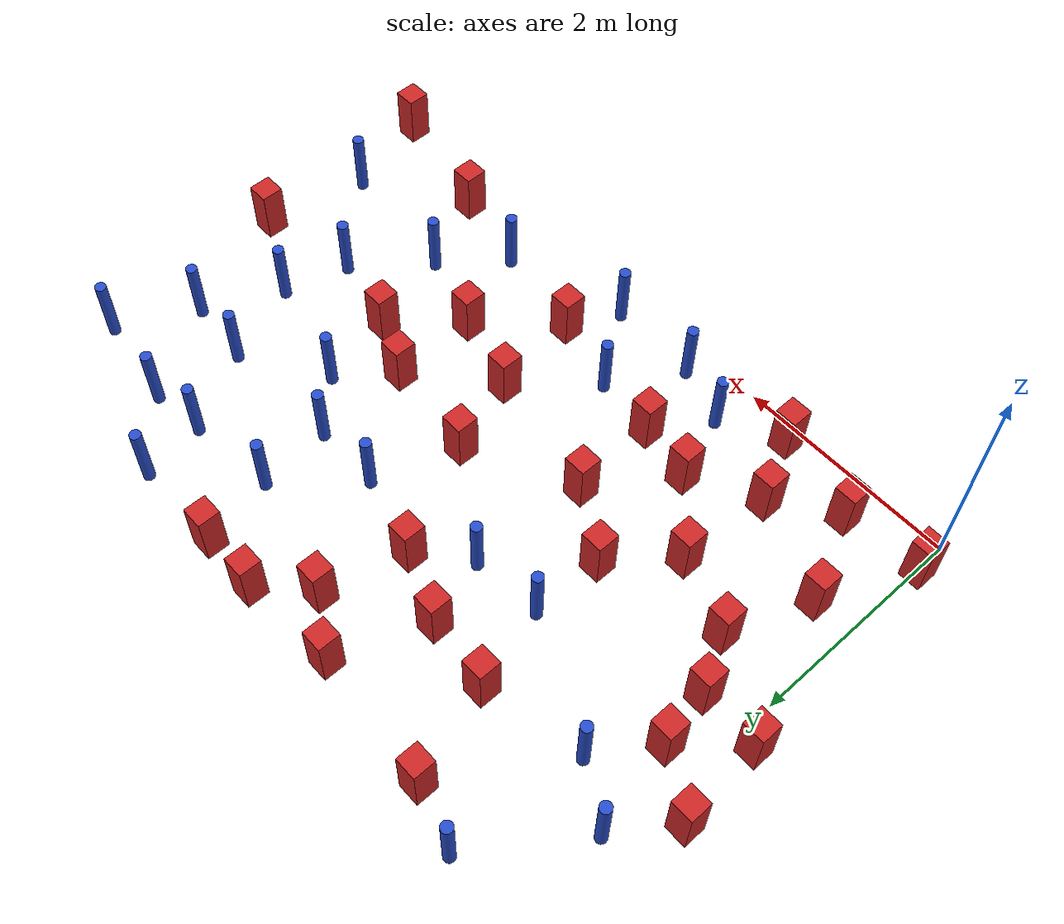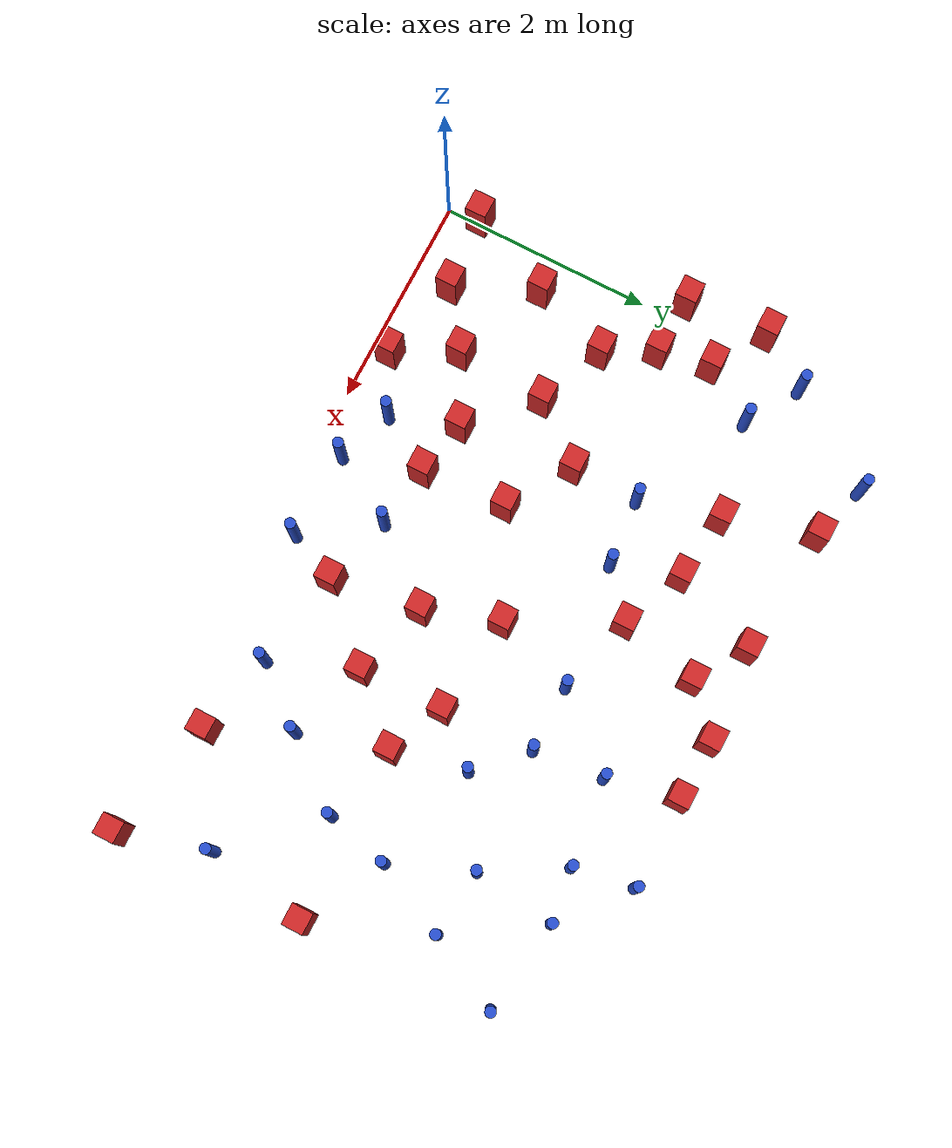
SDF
<sdf version="1.6">
 <model name="dense_50">
  <model name="pole_obstacle5">
   <static>true</static>
   <pose>4.54238996978 2.56478637814 7.38925637345e-09 -8.47170692798e-08 1.24976764937e-08 -1.74513093023e-07</pose>
   <link name="link">
    <pose>0 0 0.3 0 -0 0</pose>
    <inertial>
     <mass>1</mass>
     <inertia><ixx>0.145833</ixx><ixy>0</ixy><ixz>0</ixz><iyy>0.145833</iyy><iyz>0</iyz><izz>0.125</izz></inertia>
    </inertial>
    <collision name="collision">
     <geometry><cylinder><radius>0.05</radius><length>.6</length></cylinder></geometry>
    </collision>
    <visual name="visual">
     <geometry><cylinder><radius>0.05</radius><length>.6</length></cylinder></geometry>
     <material>
      <script><name>Gazebo/Blue</name><uri>file://media/materials/scripts/gazebo.material</uri></script>
     </material>
    </visual>
   </link>
  </model>
  <model name="square_post_obstacle8">
   <static>true</static>
   <pose>-0.0129463398346 0.317881958594 1.91545236811e-07 -7.35059704564e-06 1.12565212e-07 2.39332434364e-05</pose>
   <link name="link">
    <pose>0 0 0.25 0 -0 0</pose>
    <inertial>
     <mass>100</mass>
     <inertia>
      <ixx>0.166667</ixx>
      <ixy>0</ixy>
      <ixz>0</ixz>
      <iyy>0.166667</iyy>
      <iyz>0</iyz>
      <izz>0.166667</izz>
     </inertia>
    </inertial>
    <collision name="collision"><geometry><box><size>.2 .2 .5</size></box></geometry></collision>
    <visual name="visual">
     <geometry><box><size>.2 .2 .5</size></box></geometry>
     <material>
      <script><name>Gazebo/Red</name><uri>file://media/materials/scripts/gazebo.material</uri></script>
     </material>
    </visual>
   </link>
  </model>
  <model name="pole_obstacle9">
   <static>true</static>
   <pose>4.86439608183 3.7236601719 7.38925637345e-09 -8.47170692798e-08 1.24976764937e-08 -1.74513093023e-07</pose>
   <link name="link">
    <pose>0 0 0.3 0 -0 0</pose>
    <inertial>
     <mass>1</mass>
     <inertia><ixx>0.145833</ixx><ixy>0</ixy><ixz>0</ixz><iyy>0.145833</iyy><iyz>0</iyz><izz>0.125</izz></inertia>
    </inertial>
    <collision name="collision">
     <geometry><cylinder><radius>0.05</radius><length>.6</length></cylinder></geometry>
    </collision>
    <visual name="visual">
     <geometry><cylinder><radius>0.05</radius><length>.6</length></cylinder></geometry>
     <material>
      <script><name>Gazebo/Blue</name><uri>file://media/materials/scripts/gazebo.material</uri></script>
     </material>
    </visual>
   </link>
  </model>
  <model name="square_post_obstacle17">
   <static>true</static>
   <pose>5.25384583525 0.369909139949 1.91545236811e-07 -7.35059704564e-06 1.12565212e-07 2.39332434364e-05</pose>
   <link name="link">
    <pose>0 0 0.25 0 -0 0</pose>
    <inertial>
     <mass>100</mass>
     <inertia>
      <ixx>0.166667</ixx>
      <ixy>0</ixy>
      <ixz>0</ixz>
      <iyy>0.166667</iyy>
      <iyz>0</iyz>
      <izz>0.166667</izz>
     </inertia>
    </inertial>
    <collision name="collision"><geometry><box><size>.2 .2 .5</size></box></geometry></collision>
    <visual name="visual">
     <geometry><box><size>.2 .2 .5</size></box></geometry>
     <material>
      <script><name>Gazebo/Red</name><uri>file://media/materials/scripts/gazebo.material</uri></script>
     </material>
    </visual>
   </link>
  </model>
  <model name="square_post_obstacle20">
   <static>true</static>
   <pose>1.21002610688 0.756672883856 1.91545236811e-07 -7.35059704564e-06 1.12565212e-07 2.39332434364e-05</pose>
   <link name="link">
    <pose>0 0 0.25 0 -0 0</pose>
    <inertial>
     <mass>100</mass>
     <inertia>
      <ixx>0.166667</ixx>
      <ixy>0</ixy>
      <ixz>0</ixz>
      <iyy>0.166667</iyy>
      <iyz>0</iyz>
      <izz>0.166667</izz>
     </inertia>
    </inertial>
    <collision name="collision"><geometry><box><size>.2 .2 .5</size></box></geometry></collision>
    <visual name="visual">
     <geometry><box><size>.2 .2 .5</size></box></geometry>
     <material>
      <script><name>Gazebo/Red</name><uri>file://media/materials/scripts/gazebo.material</uri></script>
     </material>
    </visual>
   </link>
  </model>
  <model name="square_post_obstacle29">
   <static>true</static>
   <pose>-0.156257540047 2.35726194431 1.91545236811e-07 -7.35059704564e-06 1.12565212e-07 2.39332434364e-05</pose>
   <link name="link">
    <pose>0 0 0.25 0 -0 0</pose>
    <inertial>
     <mass>100</mass>
     <inertia>
      <ixx>0.166667</ixx>
      <ixy>0</ixy>
      <ixz>0</ixz>
      <iyy>0.166667</iyy>
      <iyz>0</iyz>
      <izz>0.166667</izz>
     </inertia>
    </inertial>
    <collision name="collision"><geometry><box><size>.2 .2 .5</size></box></geometry></collision>
    <visual name="visual">
     <geometry><box><size>.2 .2 .5</size></box></geometry>
     <material>
      <script><name>Gazebo/Red</name><uri>file://media/materials/scripts/gazebo.material</uri></script>
     </material>
    </visual>
   </link>
  </model>
  <model name="square_post_obstacle33">
   <static>true</static>
   <pose>0.347890601713 1.13131780654 1.91545236811e-07 -7.35059704564e-06 1.12565212e-07 2.39332434364e-05</pose>
   <link name="link">
    <pose>0 0 0.25 0 -0 0</pose>
    <inertial>
     <mass>100</mass>
     <inertia>
      <ixx>0.166667</ixx>
      <ixy>0</ixy>
      <ixz>0</ixz>
      <iyy>0.166667</iyy>
      <iyz>0</iyz>
      <izz>0.166667</izz>
     </inertia>
    </inertial>
    <collision name="collision"><geometry><box><size>.2 .2 .5</size></box></geometry></collision>
    <visual name="visual">
     <geometry><box><size>.2 .2 .5</size></box></geometry>
     <material>
      <script><name>Gazebo/Red</name><uri>file://media/materials/scripts/gazebo.material</uri></script>
     </material>
    </visual>
   </link>
  </model>
  <model name="pole_obstacle34">
   <static>true</static>
   <pose>6.15226355741 0.936716093503 7.38925637345e-09 -8.47170692799e-08 1.24976765038e-08 -1.74513093018e-07</pose>
   <link name="link">
    <pose>0 0 0.3 0 -0 0</pose>
    <inertial>
     <mass>1</mass>
     <inertia><ixx>0.145833</ixx><ixy>0</ixy><ixz>0</ixz><iyy>0.145833</iyy><iyz>0</iyz><izz>0.125</izz></inertia>
    </inertial>
    <collision name="collision">
     <geometry><cylinder><radius>0.05</radius><length>.6</length></cylinder></geometry>
    </collision>
    <visual name="visual">
     <geometry><cylinder><radius>0.05</radius><length>.6</length></cylinder></geometry>
     <material>
      <script><name>Gazebo/Blue</name><uri>file://media/materials/scripts/gazebo.material</uri></script>
     </material>
    </visual>
   </link>
  </model>
  <model name="pole_obstacle36">
   <static>true</static>
   <pose>4.49692211645 0.537638080862 7.38925637345e-09 -8.471706928e-08 1.24976765164e-08 -1.74513093012e-07</pose>
   <link name="link">
    <pose>0 0 0.3 0 -0 0</pose>
    <inertial>
     <mass>1</mass>
     <inertia><ixx>0.145833</ixx><ixy>0</ixy><ixz>0</ixz><iyy>0.145833</iyy><iyz>0</iyz><izz>0.125</izz></inertia>
    </inertial>
    <collision name="collision">
     <geometry><cylinder><radius>0.05</radius><length>.6</length></cylinder></geometry>
    </collision>
    <visual name="visual">
     <geometry><cylinder><radius>0.05</radius><length>.6</length></cylinder></geometry>
     <material>
      <script><name>Gazebo/Blue</name><uri>file://media/materials/scripts/gazebo.material</uri></script>
     </material>
    </visual>
   </link>
  </model>
  <model name="pole_obstacle42">
   <static>true</static>
   <pose>0.625954875407 3.32088880928 7.38925637345e-09 -8.47170692799e-08 1.2497676509e-08 -1.74513093016e-07</pose>
   <link name="link">
    <pose>0 0 0.3 0 -0 0</pose>
    <inertial>
     <mass>1</mass>
     <inertia><ixx>0.145833</ixx><ixy>0</ixy><ixz>0</ixz><iyy>0.145833</iyy><iyz>0</iyz><izz>0.125</izz></inertia>
    </inertial>
    <collision name="collision">
     <geometry><cylinder><radius>0.05</radius><length>.6</length></cylinder></geometry>
    </collision>
    <visual name="visual">
     <geometry><cylinder><radius>0.05</radius><length>.6</length></cylinder></geometry>
     <material>
      <script><name>Gazebo/Blue</name><uri>file://media/materials/scripts/gazebo.material</uri></script>
     </material>
    </visual>
   </link>
  </model>
  <model name="square_post_obstacle44">
   <static>true</static>
   <pose>3.23896728383 2.22645428364 1.91545236811e-07 -7.35059704564e-06 1.12565212e-07 2.39332434364e-05</pose>
   <link name="link">
    <pose>0 0 0.25 0 -0 0</pose>
    <inertial>
     <mass>100</mass>
     <inertia>
      <ixx>0.166667</ixx>
      <ixy>0</ixy>
      <ixz>0</ixz>
      <iyy>0.166667</iyy>
      <iyz>0</iyz>
      <izz>0.166667</izz>
     </inertia>
    </inertial>
    <collision name="collision"><geometry><box><size>.2 .2 .5</size></box></geometry></collision>
    <visual name="visual">
     <geometry><box><size>.2 .2 .5</size></box></geometry>
     <material>
      <script><name>Gazebo/Red</name><uri>file://media/materials/scripts/gazebo.material</uri></script>
     </material>
    </visual>
   </link>
  </model>
  <model name="square_post_obstacle51">
   <static>true</static>
   <pose>0.380697865721 2.33058414749 1.91545236811e-07 -7.35059704564e-06 1.12565212e-07 2.39332434364e-05</pose>
   <link name="link">
    <pose>0 0 0.25 0 -0 0</pose>
    <inertial>
     <mass>100</mass>
     <inertia>
      <ixx>0.166667</ixx>
      <ixy>0</ixy>
      <ixz>0</ixz>
      <iyy>0.166667</iyy>
      <iyz>0</iyz>
      <izz>0.166667</izz>
     </inertia>
    </inertial>
    <collision name="collision"><geometry><box><size>.2 .2 .5</size></box></geometry></collision>
    <visual name="visual">
     <geometry><box><size>.2 .2 .5</size></box></geometry>
     <material>
      <script><name>Gazebo/Red</name><uri>file://media/materials/scripts/gazebo.material</uri></script>
     </material>
    </visual>
   </link>
  </model>
  <model name="pole_obstacle55">
   <static>true</static>
   <pose>5.42195279625 1.69428588885 7.38925637345e-09 -8.471706928e-08 1.24976765134e-08 -1.74513093015e-07</pose>
   <link name="link">
    <pose>0 0 0.3 0 -0 0</pose>
    <inertial>
     <mass>1</mass>
     <inertia><ixx>0.145833</ixx><ixy>0</ixy><ixz>0</ixz><iyy>0.145833</iyy><iyz>0</iyz><izz>0.125</izz></inertia>
    </inertial>
    <collision name="collision">
     <geometry><cylinder><radius>0.05</radius><length>.6</length></cylinder></geometry>
    </collision>
    <visual name="visual">
     <geometry><cylinder><radius>0.05</radius><length>.6</length></cylinder></geometry>
     <material>
      <script><name>Gazebo/Blue</name><uri>file://media/materials/scripts/gazebo.material</uri></script>
     </material>
    </visual>
   </link>
  </model>
  <model name="square_post_obstacle58">
   <static>true</static>
   <pose>3.34307952893 4.29897692383 1.91545236811e-07 -7.35059704564e-06 1.12565212e-07 2.39332434364e-05</pose>
   <link name="link">
    <pose>0 0 0.25 0 -0 0</pose>
    <inertial>
     <mass>100</mass>
     <inertia>
      <ixx>0.166667</ixx>
      <ixy>0</ixy>
      <ixz>0</ixz>
      <iyy>0.166667</iyy>
      <iyz>0</iyz>
      <izz>0.166667</izz>
     </inertia>
    </inertial>
    <collision name="collision"><geometry><box><size>.2 .2 .5</size></box></geometry></collision>
    <visual name="visual">
     <geometry><box><size>.2 .2 .5</size></box></geometry>
     <material>
      <script><name>Gazebo/Red</name><uri>file://media/materials/scripts/gazebo.material</uri></script>
     </material>
    </visual>
   </link>
  </model>
  <model name="pole_obstacle56">
   <static>true</static>
   <pose>2.03568391977 0.451290150566 7.38925637345e-09 -8.47170692799e-08 1.24976765122e-08 -1.74513093015e-07</pose>
   <link name="link">
    <pose>0 0 0.3 0 -0 0</pose>
    <inertial>
     <mass>1</mass>
     <inertia><ixx>0.145833</ixx><ixy>0</ixy><ixz>0</ixz><iyy>0.145833</iyy><iyz>0</iyz><izz>0.125</izz></inertia>
    </inertial>
    <collision name="collision">
     <geometry><cylinder><radius>0.05</radius><length>.6</length></cylinder></geometry>
    </collision>
    <visual name="visual">
     <geometry><cylinder><radius>0.05</radius><length>.6</length></cylinder></geometry>
     <material>
      <script><name>Gazebo/Blue</name><uri>file://media/materials/scripts/gazebo.material</uri></script>
     </material>
    </visual>
   </link>
  </model>
  <model name="square_post_obstacle69">
   <static>true</static>
   <pose>1.70439567199 2.14129918748 1.91545236811e-07 -7.35059704564e-06 1.12565212e-07 2.39332434364e-05</pose>
   <link name="link">
    <pose>0 0 0.25 0 -0 0</pose>
    <inertial>
     <mass>100</mass>
     <inertia>
      <ixx>0.166667</ixx>
      <ixy>0</ixy>
      <ixz>0</ixz>
      <iyy>0.166667</iyy>
      <iyz>0</iyz>
      <izz>0.166667</izz>
     </inertia>
    </inertial>
    <collision name="collision"><geometry><box><size>.2 .2 .5</size></box></geometry></collision>
    <visual name="visual">
     <geometry><box><size>.2 .2 .5</size></box></geometry>
     <material>
      <script><name>Gazebo/Red</name><uri>file://media/materials/scripts/gazebo.material</uri></script>
     </material>
    </visual>
   </link>
  </model>
  <model name="pole_obstacle100">
   <static>true</static>
   <pose>2.55865952431 0.255963174134 7.38925637345e-09 -8.471706928e-08 1.24976765126e-08 -1.74513093015e-07</pose>
   <link name="link">
    <pose>0 0 0.3 0 -0 0</pose>
    <inertial>
     <mass>1</mass>
     <inertia><ixx>0.145833</ixx><ixy>0</ixy><ixz>0</ixz><iyy>0.145833</iyy><iyz>0</iyz><izz>0.125</izz></inertia>
    </inertial>
    <collision name="collision">
     <geometry><cylinder><radius>0.05</radius><length>.6</length></cylinder></geometry>
    </collision>
    <visual name="visual">
     <geometry><cylinder><radius>0.05</radius><length>.6</length></cylinder></geometry>
     <material>
      <script><name>Gazebo/Blue</name><uri>file://media/materials/scripts/gazebo.material</uri></script>
     </material>
    </visual>
   </link>
  </model>
  <model name="square_post_obstacle90">
   <static>true</static>
   <pose>2.46440706959 4.23406513678 1.91545236811e-07 -7.35059704564e-06 1.12565212e-07 2.39332434364e-05</pose>
   <link name="link">
    <pose>0 0 0.25 0 -0 0</pose>
    <inertial>
     <mass>100</mass>
     <inertia>
      <ixx>0.166667</ixx>
      <ixy>0</ixy>
      <ixz>0</ixz>
      <iyy>0.166667</iyy>
      <iyz>0</iyz>
      <izz>0.166667</izz>
     </inertia>
    </inertial>
    <collision name="collision"><geometry><box><size>.2 .2 .5</size></box></geometry></collision>
    <visual name="visual">
     <geometry><box><size>.2 .2 .5</size></box></geometry>
     <material>
      <script><name>Gazebo/Red</name><uri>file://media/materials/scripts/gazebo.material</uri></script>
     </material>
    </visual>
   </link>
  </model>
  <model name="pole_obstacle103">
   <static>true</static>
   <pose>5.36540105432 3.78649801736 7.38925637345e-09 -8.47170692798e-08 1.24976764937e-08 -1.74513093023e-07</pose>
   <link name="link">
    <pose>0 0 0.3 0 -0 0</pose>
    <inertial>
     <mass>1</mass>
     <inertia><ixx>0.145833</ixx><ixy>0</ixy><ixz>0</ixz><iyy>0.145833</iyy><iyz>0</iyz><izz>0.125</izz></inertia>
    </inertial>
    <collision name="collision">
     <geometry><cylinder><radius>0.05</radius><length>.6</length></cylinder></geometry>
    </collision>
    <visual name="visual">
     <geometry><cylinder><radius>0.05</radius><length>.6</length></cylinder></geometry>
     <material>
      <script><name>Gazebo/Blue</name><uri>file://media/materials/scripts/gazebo.material</uri></script>
     </material>
    </visual>
   </link>
  </model>
  <model name="square_post_obstacle94">
   <static>true</static>
   <pose>2.75186810921 3.18628712781 1.91545236811e-07 -7.35059704564e-06 1.12565212e-07 2.39332434364e-05</pose>
   <link name="link">
    <pose>0 0 0.25 0 -0 0</pose>
    <inertial>
     <mass>100</mass>
     <inertia>
      <ixx>0.166667</ixx>
      <ixy>0</ixy>
      <ixz>0</ixz>
      <iyy>0.166667</iyy>
      <iyz>0</iyz>
      <izz>0.166667</izz>
     </inertia>
    </inertial>
    <collision name="collision"><geometry><box><size>.2 .2 .5</size></box></geometry></collision>
    <visual name="visual">
     <geometry><box><size>.2 .2 .5</size></box></geometry>
     <material>
      <script><name>Gazebo/Red</name><uri>file://media/materials/scripts/gazebo.material</uri></script>
     </material>
    </visual>
   </link>
  </model>
  <model name="square_post_obstacle98">
   <static>true</static>
   <pose>2.34094670929 0.967388931751 1.91545236811e-07 -7.35059704564e-06 1.12565212e-07 2.39332434364e-05</pose>
   <link name="link">
    <pose>0 0 0.25 0 -0 0</pose>
    <inertial>
     <mass>100</mass>
     <inertia>
      <ixx>0.166667</ixx>
      <ixy>0</ixy>
      <ixz>0</ixz>
      <iyy>0.166667</iyy>
      <iyz>0</iyz>
      <izz>0.166667</izz>
     </inertia>
    </inertial>
    <collision name="collision"><geometry><box><size>.2 .2 .5</size></box></geometry></collision>
    <visual name="visual">
     <geometry><box><size>.2 .2 .5</size></box></geometry>
     <material>
      <script><name>Gazebo/Red</name><uri>file://media/materials/scripts/gazebo.material</uri></script>
     </material>
    </visual>
   </link>
  </model>
  <model name="square_post_obstacle108">
   <static>true</static>
   <pose>1.82022127979 1.06612872411 1.91545236811e-07 -7.35059704564e-06 1.12565212e-07 2.39332434364e-05</pose>
   <link name="link">
    <pose>0 0 0.25 0 -0 0</pose>
    <inertial>
     <mass>100</mass>
     <inertia>
      <ixx>0.166667</ixx>
      <ixy>0</ixy>
      <ixz>0</ixz>
      <iyy>0.166667</iyy>
      <iyz>0</iyz>
      <izz>0.166667</izz>
     </inertia>
    </inertial>
    <collision name="collision"><geometry><box><size>.2 .2 .5</size></box></geometry></collision>
    <visual name="visual">
     <geometry><box><size>.2 .2 .5</size></box></geometry>
     <material>
      <script><name>Gazebo/Red</name><uri>file://media/materials/scripts/gazebo.material</uri></script>
     </material>
    </visual>
   </link>
  </model>
  <model name="pole_obstacle121">
   <static>true</static>
   <pose>3.49970595557 2.97972236115 7.38925637345e-09 -8.47170692798e-08 1.24976764939e-08 -1.74513093025e-07</pose>
   <link name="link">
    <pose>0 0 0.3 0 -0 0</pose>
    <inertial>
     <mass>1</mass>
     <inertia><ixx>0.145833</ixx><ixy>0</ixy><ixz>0</ixz><iyy>0.145833</iyy><iyz>0</iyz><izz>0.125</izz></inertia>
    </inertial>
    <collision name="collision">
     <geometry><cylinder><radius>0.05</radius><length>.6</length></cylinder></geometry>
    </collision>
    <visual name="visual">
     <geometry><cylinder><radius>0.05</radius><length>.6</length></cylinder></geometry>
     <material>
      <script><name>Gazebo/Blue</name><uri>file://media/materials/scripts/gazebo.material</uri></script>
     </material>
    </visual>
   </link>
  </model>
  <model name="pole_obstacle122">
   <static>true</static>
   <pose>5.89256325081 2.96693084631 7.38925637345e-09 -8.47170692798e-08 1.24976764937e-08 -1.74513093023e-07</pose>
   <link name="link">
    <pose>0 0 0.3 0 -0 0</pose>
    <inertial>
     <mass>1</mass>
     <inertia><ixx>0.145833</ixx><ixy>0</ixy><ixz>0</ixz><iyy>0.145833</iyy><iyz>0</iyz><izz>0.125</izz></inertia>
    </inertial>
    <collision name="collision">
     <geometry><cylinder><radius>0.05</radius><length>.6</length></cylinder></geometry>
    </collision>
    <visual name="visual">
     <geometry><cylinder><radius>0.05</radius><length>.6</length></cylinder></geometry>
     <material>
      <script><name>Gazebo/Blue</name><uri>file://media/materials/scripts/gazebo.material</uri></script>
     </material>
    </visual>
   </link>
  </model>
  <model name="square_post_obstacle118">
   <static>true</static>
   <pose>-0.218139517069 3.13630341641 1.91545236811e-07 -7.35059704564e-06 1.12565212e-07 2.39332434364e-05</pose>
   <link name="link">
    <pose>0 0 0.25 0 -0 0</pose>
    <inertial>
     <mass>100</mass>
     <inertia>
      <ixx>0.166667</ixx>
      <ixy>0</ixy>
      <ixz>0</ixz>
      <iyy>0.166667</iyy>
      <iyz>0</iyz>
      <izz>0.166667</izz>
     </inertia>
    </inertial>
    <collision name="collision"><geometry><box><size>.2 .2 .5</size></box></geometry></collision>
    <visual name="visual">
     <geometry><box><size>.2 .2 .5</size></box></geometry>
     <material>
      <script><name>Gazebo/Red</name><uri>file://media/materials/scripts/gazebo.material</uri></script>
     </material>
    </visual>
   </link>
  </model>
  <model name="square_post_obstacle125">
   <static>true</static>
   <pose>2.14942397595 3.43456352625 1.91545236811e-07 -7.35059704564e-06 1.12565212e-07 2.39332434364e-05</pose>
   <link name="link">
    <pose>0 0 0.25 0 -0 0</pose>
    <inertial>
     <mass>100</mass>
     <inertia>
      <ixx>0.166667</ixx>
      <ixy>0</ixy>
      <ixz>0</ixz>
      <iyy>0.166667</iyy>
      <iyz>0</iyz>
      <izz>0.166667</izz>
     </inertia>
    </inertial>
    <collision name="collision"><geometry><box><size>.2 .2 .5</size></box></geometry></collision>
    <visual name="visual">
     <geometry><box><size>.2 .2 .5</size></box></geometry>
     <material>
      <script><name>Gazebo/Red</name><uri>file://media/materials/scripts/gazebo.material</uri></script>
     </material>
    </visual>
   </link>
  </model>
  <model name="pole_obstacle140">
   <static>true</static>
   <pose>4.92893289476 1.07229710617 7.38925637345e-09 -8.471706928e-08 1.24976765134e-08 -1.74513093015e-07</pose>
   <link name="link">
    <pose>0 0 0.3 0 -0 0</pose>
    <inertial>
     <mass>1</mass>
     <inertia><ixx>0.145833</ixx><ixy>0</ixy><ixz>0</ixz><iyy>0.145833</iyy><iyz>0</iyz><izz>0.125</izz></inertia>
    </inertial>
    <collision name="collision">
     <geometry><cylinder><radius>0.05</radius><length>.6</length></cylinder></geometry>
    </collision>
    <visual name="visual">
     <geometry><cylinder><radius>0.05</radius><length>.6</length></cylinder></geometry>
     <material>
      <script><name>Gazebo/Blue</name><uri>file://media/materials/scripts/gazebo.material</uri></script>
     </material>
    </visual>
   </link>
  </model>
  <model name="pole_obstacle141">
   <static>true</static>
   <pose>4.12055723762 2.97585806209 7.38925637345e-09 -8.47170692798e-08 1.24976764937e-08 -1.74513093023e-07</pose>
   <link name="link">
    <pose>0 0 0.3 0 -0 0</pose>
    <inertial>
     <mass>1</mass>
     <inertia><ixx>0.145833</ixx><ixy>0</ixy><ixz>0</ixz><iyy>0.145833</iyy><iyz>0</iyz><izz>0.125</izz></inertia>
    </inertial>
    <collision name="collision">
     <geometry><cylinder><radius>0.05</radius><length>.6</length></cylinder></geometry>
    </collision>
    <visual name="visual">
     <geometry><cylinder><radius>0.05</radius><length>.6</length></cylinder></geometry>
     <material>
      <script><name>Gazebo/Blue</name><uri>file://media/materials/scripts/gazebo.material</uri></script>
     </material>
    </visual>
   </link>
  </model>
  <model name="square_post_obstacle127">
   <static>true</static>
   <pose>6.37756579108 0.111631129207 1.91545236811e-07 -7.35059704564e-06 1.12565212e-07 2.39332434364e-05</pose>
   <link name="link">
    <pose>0 0 0.25 0 -0 0</pose>
    <inertial>
     <mass>100</mass>
     <inertia>
      <ixx>0.166667</ixx>
      <ixy>0</ixy>
      <ixz>0</ixz>
      <iyy>0.166667</iyy>
      <iyz>0</iyz>
      <izz>0.166667</izz>
     </inertia>
    </inertial>
    <collision name="collision"><geometry><box><size>.2 .2 .5</size></box></geometry></collision>
    <visual name="visual">
     <geometry><box><size>.2 .2 .5</size></box></geometry>
     <material>
      <script><name>Gazebo/Red</name><uri>file://media/materials/scripts/gazebo.material</uri></script>
     </material>
    </visual>
   </link>
  </model>
  <model name="square_post_obstacle128">
   <static>true</static>
   <pose>3.90174752887 4.27979499866 1.91545236811e-07 -7.35059704564e-06 1.12565212e-07 2.39332434364e-05</pose>
   <link name="link">
    <pose>0 0 0.25 0 -0 0</pose>
    <inertial>
     <mass>100</mass>
     <inertia>
      <ixx>0.166667</ixx>
      <ixy>0</ixy>
      <ixz>0</ixz>
      <iyy>0.166667</iyy>
      <iyz>0</iyz>
      <izz>0.166667</izz>
     </inertia>
    </inertial>
    <collision name="collision"><geometry><box><size>.2 .2 .5</size></box></geometry></collision>
    <visual name="visual">
     <geometry><box><size>.2 .2 .5</size></box></geometry>
     <material>
      <script><name>Gazebo/Red</name><uri>file://media/materials/scripts/gazebo.material</uri></script>
     </material>
    </visual>
   </link>
  </model>
  <model name="square_post_obstacle131">
   <static>true</static>
   <pose>3.58319737693 0.709496786827 1.91545236811e-07 -7.35059704564e-06 1.12565212e-07 2.39332434364e-05</pose>
   <link name="link">
    <pose>0 0 0.25 0 -0 0</pose>
    <inertial>
     <mass>100</mass>
     <inertia>
      <ixx>0.166667</ixx>
      <ixy>0</ixy>
      <ixz>0</ixz>
      <iyy>0.166667</iyy>
      <iyz>0</iyz>
      <izz>0.166667</izz>
     </inertia>
    </inertial>
    <collision name="collision"><geometry><box><size>.2 .2 .5</size></box></geometry></collision>
    <visual name="visual">
     <geometry><box><size>.2 .2 .5</size></box></geometry>
     <material>
      <script><name>Gazebo/Red</name><uri>file://media/materials/scripts/gazebo.material</uri></script>
     </material>
    </visual>
   </link>
  </model>
  <model name="square_post_obstacle134">
   <static>true</static>
   <pose>2.29128909394 1.76275824219 1.91545236811e-07 -7.35059704564e-06 1.12565212e-07 2.39332434364e-05</pose>
   <link name="link">
    <pose>0 0 0.25 0 -0 0</pose>
    <inertial>
     <mass>100</mass>
     <inertia>
      <ixx>0.166667</ixx>
      <ixy>0</ixy>
      <ixz>0</ixz>
      <iyy>0.166667</iyy>
      <iyz>0</iyz>
      <izz>0.166667</izz>
     </inertia>
    </inertial>
    <collision name="collision"><geometry><box><size>.2 .2 .5</size></box></geometry></collision>
    <visual name="visual">
     <geometry><box><size>.2 .2 .5</size></box></geometry>
     <material>
      <script><name>Gazebo/Red</name><uri>file://media/materials/scripts/gazebo.material</uri></script>
     </material>
    </visual>
   </link>
  </model>
  <model name="square_post_obstacle135">
   <static>true</static>
   <pose>1.2628710877 4.3396809338 1.91545236811e-07 -7.35059704564e-06 1.12565212e-07 2.39332434364e-05</pose>
   <link name="link">
    <pose>0 0 0.25 0 -0 0</pose>
    <inertial>
     <mass>100</mass>
     <inertia>
      <ixx>0.166667</ixx>
      <ixy>0</ixy>
      <ixz>0</ixz>
      <iyy>0.166667</iyy>
      <iyz>0</iyz>
      <izz>0.166667</izz>
     </inertia>
    </inertial>
    <collision name="collision"><geometry><box><size>.2 .2 .5</size></box></geometry></collision>
    <visual name="visual">
     <geometry><box><size>.2 .2 .5</size></box></geometry>
     <material>
      <script><name>Gazebo/Red</name><uri>file://media/materials/scripts/gazebo.material</uri></script>
     </material>
    </visual>
   </link>
  </model>
  <model name="square_post_obstacle143">
   <static>true</static>
   <pose>0.627832228468 1.87246103683 1.91545236811e-07 -7.35059704564e-06 1.12565212e-07 2.39332434364e-05</pose>
   <link name="link">
    <pose>0 0 0.25 0 -0 0</pose>
    <inertial>
     <mass>100</mass>
     <inertia>
      <ixx>0.166667</ixx>
      <ixy>0</ixy>
      <ixz>0</ixz>
      <iyy>0.166667</iyy>
      <iyz>0</iyz>
      <izz>0.166667</izz>
     </inertia>
    </inertial>
    <collision name="collision"><geometry><box><size>.2 .2 .5</size></box></geometry></collision>
    <visual name="visual">
     <geometry><box><size>.2 .2 .5</size></box></geometry>
     <material>
      <script><name>Gazebo/Red</name><uri>file://media/materials/scripts/gazebo.material</uri></script>
     </material>
    </visual>
   </link>
  </model>
  <model name="pole_obstacle157">
   <static>true</static>
   <pose>3.38433895781 0.232022976258 7.38925637345e-09 -8.471706928e-08 1.24976765149e-08 -1.74513093013e-07</pose>
   <link name="link">
    <pose>0 0 0.3 0 -0 0</pose>
    <inertial>
     <mass>1</mass>
     <inertia><ixx>0.145833</ixx><ixy>0</ixy><ixz>0</ixz><iyy>0.145833</iyy><iyz>0</iyz><izz>0.125</izz></inertia>
    </inertial>
    <collision name="collision">
     <geometry><cylinder><radius>0.05</radius><length>.6</length></cylinder></geometry>
    </collision>
    <visual name="visual">
     <geometry><cylinder><radius>0.05</radius><length>.6</length></cylinder></geometry>
     <material>
      <script><name>Gazebo/Blue</name><uri>file://media/materials/scripts/gazebo.material</uri></script>
     </material>
    </visual>
   </link>
  </model>
  <model name="square_post_obstacle153">
   <static>true</static>
   <pose>4.68096405431 1.87436678496 1.91545236811e-07 -7.35059704564e-06 1.12565212e-07 2.39332434364e-05</pose>
   <link name="link">
    <pose>0 0 0.25 0 -0 0</pose>
    <inertial>
     <mass>100</mass>
     <inertia>
      <ixx>0.166667</ixx>
      <ixy>0</ixy>
      <ixz>0</ixz>
      <iyy>0.166667</iyy>
      <iyz>0</iyz>
      <izz>0.166667</izz>
     </inertia>
    </inertial>
    <collision name="collision"><geometry><box><size>.2 .2 .5</size></box></geometry></collision>
    <visual name="visual">
     <geometry><box><size>.2 .2 .5</size></box></geometry>
     <material>
      <script><name>Gazebo/Red</name><uri>file://media/materials/scripts/gazebo.material</uri></script>
     </material>
    </visual>
   </link>
  </model>
  <model name="pole_obstacle160">
   <static>true</static>
   <pose>4.05605083759 3.62994173317 7.38925637345e-09 -8.47170692798e-08 1.24976764937e-08 -1.74513093023e-07</pose>
   <link name="link">
    <pose>0 0 0.3 0 -0 0</pose>
    <inertial>
     <mass>1</mass>
     <inertia><ixx>0.145833</ixx><ixy>0</ixy><ixz>0</ixz><iyy>0.145833</iyy><iyz>0</iyz><izz>0.125</izz></inertia>
    </inertial>
    <collision name="collision">
     <geometry><cylinder><radius>0.05</radius><length>.6</length></cylinder></geometry>
    </collision>
    <visual name="visual">
     <geometry><cylinder><radius>0.05</radius><length>.6</length></cylinder></geometry>
     <material>
      <script><name>Gazebo/Blue</name><uri>file://media/materials/scripts/gazebo.material</uri></script>
     </material>
    </visual>
   </link>
  </model>
  <model name="square_post_obstacle155">
   <static>true</static>
   <pose>1.27295138165 1.61369168136 1.91545236811e-07 -7.35059704564e-06 1.12565212e-07 2.39332434364e-05</pose>
   <link name="link">
    <pose>0 0 0.25 0 -0 0</pose>
    <inertial>
     <mass>100</mass>
     <inertia>
      <ixx>0.166667</ixx>
      <ixy>0</ixy>
      <ixz>0</ixz>
      <iyy>0.166667</iyy>
      <iyz>0</iyz>
      <izz>0.166667</izz>
     </inertia>
    </inertial>
    <collision name="collision"><geometry><box><size>.2 .2 .5</size></box></geometry></collision>
    <visual name="visual">
     <geometry><box><size>.2 .2 .5</size></box></geometry>
     <material>
      <script><name>Gazebo/Red</name><uri>file://media/materials/scripts/gazebo.material</uri></script>
     </material>
    </visual>
   </link>
  </model>
  <model name="square_post_obstacle158">
   <static>true</static>
   <pose>4.15856500477 2.11439326302 1.91545236811e-07 -7.35059704564e-06 1.12565212e-07 2.39332434364e-05</pose>
   <link name="link">
    <pose>0 0 0.25 0 -0 0</pose>
    <inertial>
     <mass>100</mass>
     <inertia>
      <ixx>0.166667</ixx>
      <ixy>0</ixy>
      <ixz>0</ixz>
      <iyy>0.166667</iyy>
      <iyz>0</iyz>
      <izz>0.166667</izz>
     </inertia>
    </inertial>
    <collision name="collision"><geometry><box><size>.2 .2 .5</size></box></geometry></collision>
    <visual name="visual">
     <geometry><box><size>.2 .2 .5</size></box></geometry>
     <material>
      <script><name>Gazebo/Red</name><uri>file://media/materials/scripts/gazebo.material</uri></script>
     </material>
    </visual>
   </link>
  </model>
  <model name="pole_obstacle168">
   <static>true</static>
   <pose>2.34425377297 2.83354693219 7.38925637345e-09 -8.47170692798e-08 1.24976764939e-08 -1.74513093025e-07</pose>
   <link name="link">
    <pose>0 0 0.3 0 -0 0</pose>
    <inertial>
     <mass>1</mass>
     <inertia><ixx>0.145833</ixx><ixy>0</ixy><ixz>0</ixz><iyy>0.145833</iyy><iyz>0</iyz><izz>0.125</izz></inertia>
    </inertial>
    <collision name="collision">
     <geometry><cylinder><radius>0.05</radius><length>.6</length></cylinder></geometry>
    </collision>
    <visual name="visual">
     <geometry><cylinder><radius>0.05</radius><length>.6</length></cylinder></geometry>
     <material>
      <script><name>Gazebo/Blue</name><uri>file://media/materials/scripts/gazebo.material</uri></script>
     </material>
    </visual>
   </link>
  </model>
  <model name="pole_obstacle172">
   <static>true</static>
   <pose>6.2372734884 3.65811585942 7.38925637345e-09 -8.47170692798e-08 1.24976764937e-08 -1.74513093023e-07</pose>
   <link name="link">
    <pose>0 0 0.3 0 -0 0</pose>
    <inertial>
     <mass>1</mass>
     <inertia><ixx>0.145833</ixx><ixy>0</ixy><ixz>0</ixz><iyy>0.145833</iyy><iyz>0</iyz><izz>0.125</izz></inertia>
    </inertial>
    <collision name="collision">
     <geometry><cylinder><radius>0.05</radius><length>.6</length></cylinder></geometry>
    </collision>
    <visual name="visual">
     <geometry><cylinder><radius>0.05</radius><length>.6</length></cylinder></geometry>
     <material>
      <script><name>Gazebo/Blue</name><uri>file://media/materials/scripts/gazebo.material</uri></script>
     </material>
    </visual>
   </link>
  </model>
  <model name="square_post_obstacle168">
   <static>true</static>
   <pose>3.46857931395 1.53829510034 1.91545236811e-07 -7.35059704564e-06 1.12565212e-07 2.39332434364e-05</pose>
   <link name="link">
    <pose>0 0 0.25 0 -0 0</pose>
    <inertial>
     <mass>100</mass>
     <inertia>
      <ixx>0.166667</ixx>
      <ixy>0</ixy>
      <ixz>0</ixz>
      <iyy>0.166667</iyy>
      <iyz>0</iyz>
      <izz>0.166667</izz>
     </inertia>
    </inertial>
    <collision name="collision"><geometry><box><size>.2 .2 .5</size></box></geometry></collision>
    <visual name="visual">
     <geometry><box><size>.2 .2 .5</size></box></geometry>
     <material>
      <script><name>Gazebo/Red</name><uri>file://media/materials/scripts/gazebo.material</uri></script>
     </material>
    </visual>
   </link>
  </model>
  <model name="pole_obstacle179">
   <static>true</static>
   <pose>2.9282415062 0.884010751341 7.38925637345e-09 -8.471706928e-08 1.24976765177e-08 -1.74513093012e-07</pose>
   <link name="link">
    <pose>0 0 0.3 0 -0 0</pose>
    <inertial>
     <mass>1</mass>
     <inertia><ixx>0.145833</ixx><ixy>0</ixy><ixz>0</ixz><iyy>0.145833</iyy><iyz>0</iyz><izz>0.125</izz></inertia>
    </inertial>
    <collision name="collision">
     <geometry><cylinder><radius>0.05</radius><length>.6</length></cylinder></geometry>
    </collision>
    <visual name="visual">
     <geometry><cylinder><radius>0.05</radius><length>.6</length></cylinder></geometry>
     <material>
      <script><name>Gazebo/Blue</name><uri>file://media/materials/scripts/gazebo.material</uri></script>
     </material>
    </visual>
   </link>
  </model>
  <model name="square_post_obstacle179">
   <static>true</static>
   <pose>4.1787353244 1.32487419497 1.91545236811e-07 -7.35059704564e-06 1.12565212e-07 2.39332434364e-05</pose>
   <link name="link">
    <pose>0 0 0.25 0 -0 0</pose>
    <inertial>
     <mass>100</mass>
     <inertia>
      <ixx>0.166667</ixx>
      <ixy>0</ixy>
      <ixz>0</ixz>
      <iyy>0.166667</iyy>
      <iyz>0</iyz>
      <izz>0.166667</izz>
     </inertia>
    </inertial>
    <collision name="collision"><geometry><box><size>.2 .2 .5</size></box></geometry></collision>
    <visual name="visual">
     <geometry><box><size>.2 .2 .5</size></box></geometry>
     <material>
      <script><name>Gazebo/Red</name><uri>file://media/materials/scripts/gazebo.material</uri></script>
     </material>
    </visual>
   </link>
  </model>
  <model name="square_post_obstacle183">
   <static>true</static>
   <pose>0.692492661465 0.384332234139 1.91545236811e-07 -7.35059704564e-06 1.12565212e-07 2.39332434364e-05</pose>
   <link name="link">
    <pose>0 0 0.25 0 -0 0</pose>
    <inertial>
     <mass>100</mass>
     <inertia>
      <ixx>0.166667</ixx>
      <ixy>0</ixy>
      <ixz>0</ixz>
      <iyy>0.166667</iyy>
      <iyz>0</iyz>
      <izz>0.166667</izz>
     </inertia>
    </inertial>
    <collision name="collision"><geometry><box><size>.2 .2 .5</size></box></geometry></collision>
    <visual name="visual">
     <geometry><box><size>.2 .2 .5</size></box></geometry>
     <material>
      <script><name>Gazebo/Red</name><uri>file://media/materials/scripts/gazebo.material</uri></script>
     </material>
    </visual>
   </link>
  </model>
  <model name="square_post_obstacle184">
   <static>true</static>
   <pose>2.93462833641 3.92752598488 1.91545236811e-07 -7.35059704564e-06 1.12565212e-07 2.39332434364e-05</pose>
   <link name="link">
    <pose>0 0 0.25 0 -0 0</pose>
    <inertial>
     <mass>100</mass>
     <inertia>
      <ixx>0.166667</ixx>
      <ixy>0</ixy>
      <ixz>0</ixz>
      <iyy>0.166667</iyy>
      <iyz>0</iyz>
      <izz>0.166667</izz>
     </inertia>
    </inertial>
    <collision name="collision"><geometry><box><size>.2 .2 .5</size></box></geometry></collision>
    <visual name="visual">
     <geometry><box><size>.2 .2 .5</size></box></geometry>
     <material>
      <script><name>Gazebo/Red</name><uri>file://media/materials/scripts/gazebo.material</uri></script>
     </material>
    </visual>
   </link>
  </model>
  <model name="square_post_obstacle191">
   <static>true</static>
   <pose>1.51850456287 3.51195610424 1.91545236811e-07 -7.35059704564e-06 1.12565212e-07 2.39332434364e-05</pose>
   <link name="link">
    <pose>0 0 0.25 0 -0 0</pose>
    <inertial>
     <mass>100</mass>
     <inertia>
      <ixx>0.166667</ixx>
      <ixy>0</ixy>
      <ixz>0</ixz>
      <iyy>0.166667</iyy>
      <iyz>0</iyz>
      <izz>0.166667</izz>
     </inertia>
    </inertial>
    <collision name="collision"><geometry><box><size>.2 .2 .5</size></box></geometry></collision>
    <visual name="visual">
     <geometry><box><size>.2 .2 .5</size></box></geometry>
     <material>
      <script><name>Gazebo/Red</name><uri>file://media/materials/scripts/gazebo.material</uri></script>
     </material>
    </visual>
   </link>
  </model>
  <model name="square_post_obstacle194">
   <static>true</static>
   <pose>6.3098794007 1.88328564717 1.91545236811e-07 -7.35059704564e-06 1.12565212e-07 2.39332434364e-05</pose>
   <link name="link">
    <pose>0 0 0.25 0 -0 0</pose>
    <inertial>
     <mass>100</mass>
     <inertia>
      <ixx>0.166667</ixx>
      <ixy>0</ixy>
      <ixz>0</ixz>
      <iyy>0.166667</iyy>
      <iyz>0</iyz>
      <izz>0.166667</izz>
     </inertia>
    </inertial>
    <collision name="collision"><geometry><box><size>.2 .2 .5</size></box></geometry></collision>
    <visual name="visual">
     <geometry><box><size>.2 .2 .5</size></box></geometry>
     <material>
      <script><name>Gazebo/Red</name><uri>file://media/materials/scripts/gazebo.material</uri></script>
     </material>
    </visual>
   </link>
  </model>
  <model name="square_post_obstacle200">
   <static>true</static>
   <pose>1.49290462767 0.180411513359 1.91545236811e-07 -7.35059704564e-06 1.12565212e-07 2.39332434364e-05</pose>
   <link name="link">
    <pose>0 0 0.25 0 -0 0</pose>
    <inertial>
     <mass>100</mass>
     <inertia>
      <ixx>0.166667</ixx>
      <ixy>0</ixy>
      <ixz>0</ixz>
      <iyy>0.166667</iyy>
      <iyz>0</iyz>
      <izz>0.166667</izz>
     </inertia>
    </inertial>
    <collision name="collision"><geometry><box><size>.2 .2 .5</size></box></geometry></collision>
    <visual name="visual">
     <geometry><box><size>.2 .2 .5</size></box></geometry>
     <material>
      <script><name>Gazebo/Red</name><uri>file://media/materials/scripts/gazebo.material</uri></script>
     </material>
    </visual>
   </link>
  </model>
  <model name="pole_obstacle191">
   <static>true</static>
   <pose>5.26998940884 3.02655387548 7.38925637345e-09 -8.47170692798e-08 1.24976764937e-08 -1.74513093023e-07</pose>
   <link name="link">
    <pose>0 0 0.3 0 -0 0</pose>
    <inertial>
     <mass>1</mass>
     <inertia><ixx>0.145833</ixx><ixy>0</ixy><ixz>0</ixz><iyy>0.145833</iyy><iyz>0</iyz><izz>0.125</izz></inertia>
    </inertial>
    <collision name="collision">
     <geometry><cylinder><radius>0.05</radius><length>.6</length></cylinder></geometry>
    </collision>
    <visual name="visual">
     <geometry><cylinder><radius>0.05</radius><length>.6</length></cylinder></geometry>
     <material>
      <script><name>Gazebo/Blue</name><uri>file://media/materials/scripts/gazebo.material</uri></script>
     </material>
    </visual>
   </link>
  </model>
  <model name="pole_obstacle193">
   <static>true</static>
   <pose>1.71677221113 2.77912835504 7.38925637345e-09 -8.47170692799e-08 1.24976765053e-08 -1.74513093017e-07</pose>
   <link name="link">
    <pose>0 0 0.3 0 -0 0</pose>
    <inertial>
     <mass>1</mass>
     <inertia><ixx>0.145833</ixx><ixy>0</ixy><ixz>0</ixz><iyy>0.145833</iyy><iyz>0</iyz><izz>0.125</izz></inertia>
    </inertial>
    <collision name="collision">
     <geometry><cylinder><radius>0.05</radius><length>.6</length></cylinder></geometry>
    </collision>
    <visual name="visual">
     <geometry><cylinder><radius>0.05</radius><length>.6</length></cylinder></geometry>
     <material>
      <script><name>Gazebo/Blue</name><uri>file://media/materials/scripts/gazebo.material</uri></script>
     </material>
    </visual>
   </link>
  </model>
  <model name="pole_obstacle194">
   <static>true</static>
   <pose>4.76900648087 4.28651370461 7.38925637345e-09 -8.47170692796e-08 1.24976764786e-08 -1.74513093032e-07</pose>
   <link name="link">
    <pose>0 0 0.3 0 -0 0</pose>
    <inertial>
     <mass>1</mass>
     <inertia><ixx>0.145833</ixx><ixy>0</ixy><ixz>0</ixz><iyy>0.145833</iyy><iyz>0</iyz><izz>0.125</izz></inertia>
    </inertial>
    <collision name="collision">
     <geometry><cylinder><radius>0.05</radius><length>.6</length></cylinder></geometry>
    </collision>
    <visual name="visual">
     <geometry><cylinder><radius>0.05</radius><length>.6</length></cylinder></geometry>
     <material>
      <script><name>Gazebo/Blue</name><uri>file://media/materials/scripts/gazebo.material</uri></script>
     </material>
    </visual>
   </link>
  </model>
  <model name="pole_obstacle211">
   <static>true</static>
   <pose>0.732912647798 4.50684958085 7.38925637345e-09 -8.471706928e-08 1.24976765086e-08 -1.74513093015e-07</pose>
   <link name="link">
    <pose>0 0 0.3 0 -0 0</pose>
    <inertial>
     <mass>1</mass>
     <inertia><ixx>0.145833</ixx><ixy>0</ixy><ixz>0</ixz><iyy>0.145833</iyy><iyz>0</iyz><izz>0.125</izz></inertia>
    </inertial>
    <collision name="collision">
     <geometry><cylinder><radius>0.05</radius><length>.6</length></cylinder></geometry>
    </collision>
    <visual name="visual">
     <geometry><cylinder><radius>0.05</radius><length>.6</length></cylinder></geometry>
     <material>
      <script><name>Gazebo/Blue</name><uri>file://media/materials/scripts/gazebo.material</uri></script>
     </material>
    </visual>
   </link>
  </model>
  <model name="pole_obstacle218">
   <static>true</static>
   <pose>5.57083851277 2.284967224 7.38925637345e-09 -8.47170692798e-08 1.24976764937e-08 -1.74513093023e-07</pose>
   <link name="link">
    <pose>0 0 0.3 0 -0 0</pose>
    <inertial>
     <mass>1</mass>
     <inertia><ixx>0.145833</ixx><ixy>0</ixy><ixz>0</ixz><iyy>0.145833</iyy><iyz>0</iyz><izz>0.125</izz></inertia>
    </inertial>
    <collision name="collision">
     <geometry><cylinder><radius>0.05</radius><length>.6</length></cylinder></geometry>
    </collision>
    <visual name="visual">
     <geometry><cylinder><radius>0.05</radius><length>.6</length></cylinder></geometry>
     <material>
      <script><name>Gazebo/Blue</name><uri>file://media/materials/scripts/gazebo.material</uri></script>
     </material>
    </visual>
   </link>
  </model>
  <model name="pole_obstacle226">
   <static>true</static>
   <pose>0.123938805042 3.62363284426 7.38925637345e-09 -8.47170692799e-08 1.24976765049e-08 -1.74513093018e-07</pose>
   <link name="link">
    <pose>0 0 0.3 0 -0 0</pose>
    <inertial>
     <mass>1</mass>
     <inertia><ixx>0.145833</ixx><ixy>0</ixy><ixz>0</ixz><iyy>0.145833</iyy><iyz>0</iyz><izz>0.125</izz></inertia>
    </inertial>
    <collision name="collision">
     <geometry><cylinder><radius>0.05</radius><length>.6</length></cylinder></geometry>
    </collision>
    <visual name="visual">
     <geometry><cylinder><radius>0.05</radius><length>.6</length></cylinder></geometry>
     <material>
      <script><name>Gazebo/Blue</name><uri>file://media/materials/scripts/gazebo.material</uri></script>
     </material>
    </visual>
   </link>
  </model>
  <model name="square_post_obstacle209">
   <static>true</static>
   <pose>0.286914964805 2.82239998808 1.91545236811e-07 -7.35059704564e-06 1.12565212e-07 2.39332434364e-05</pose>
   <link name="link">
    <pose>0 0 0.25 0 -0 0</pose>
    <inertial>
     <mass>100</mass>
     <inertia>
      <ixx>0.166667</ixx>
      <ixy>0</ixy>
      <ixz>0</ixz>
      <iyy>0.166667</iyy>
      <iyz>0</iyz>
      <izz>0.166667</izz>
     </inertia>
    </inertial>
    <collision name="collision"><geometry><box><size>.2 .2 .5</size></box></geometry></collision>
    <visual name="visual">
     <geometry><box><size>.2 .2 .5</size></box></geometry>
     <material>
      <script><name>Gazebo/Red</name><uri>file://media/materials/scripts/gazebo.material</uri></script>
     </material>
    </visual>
   </link>
  </model>
 </model>
</sdf>
